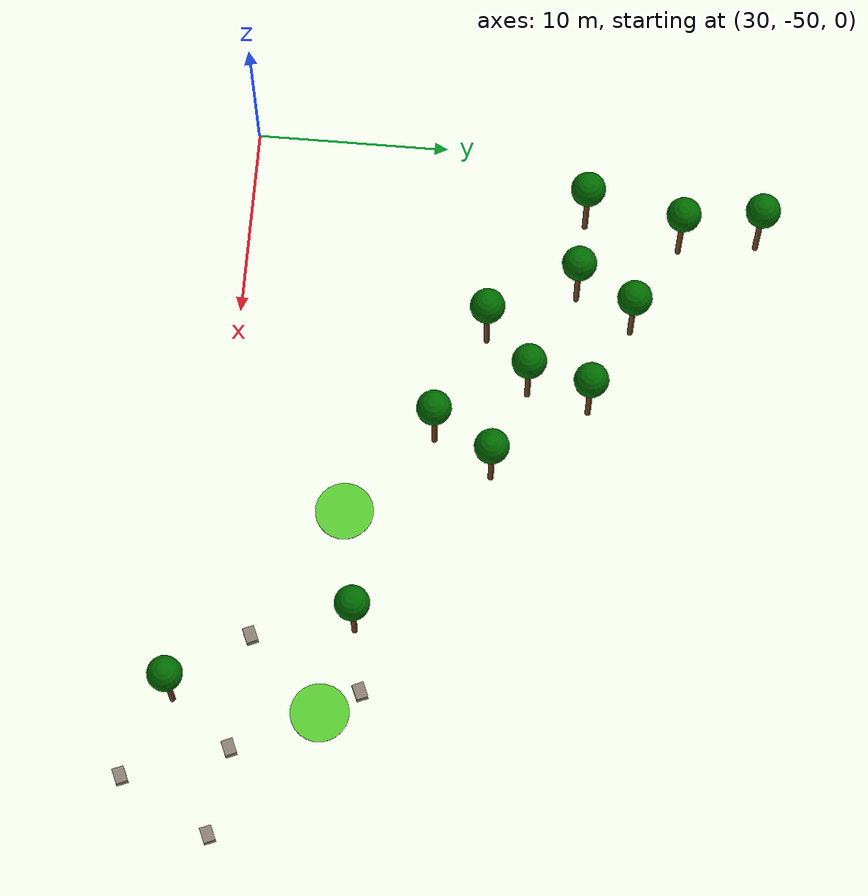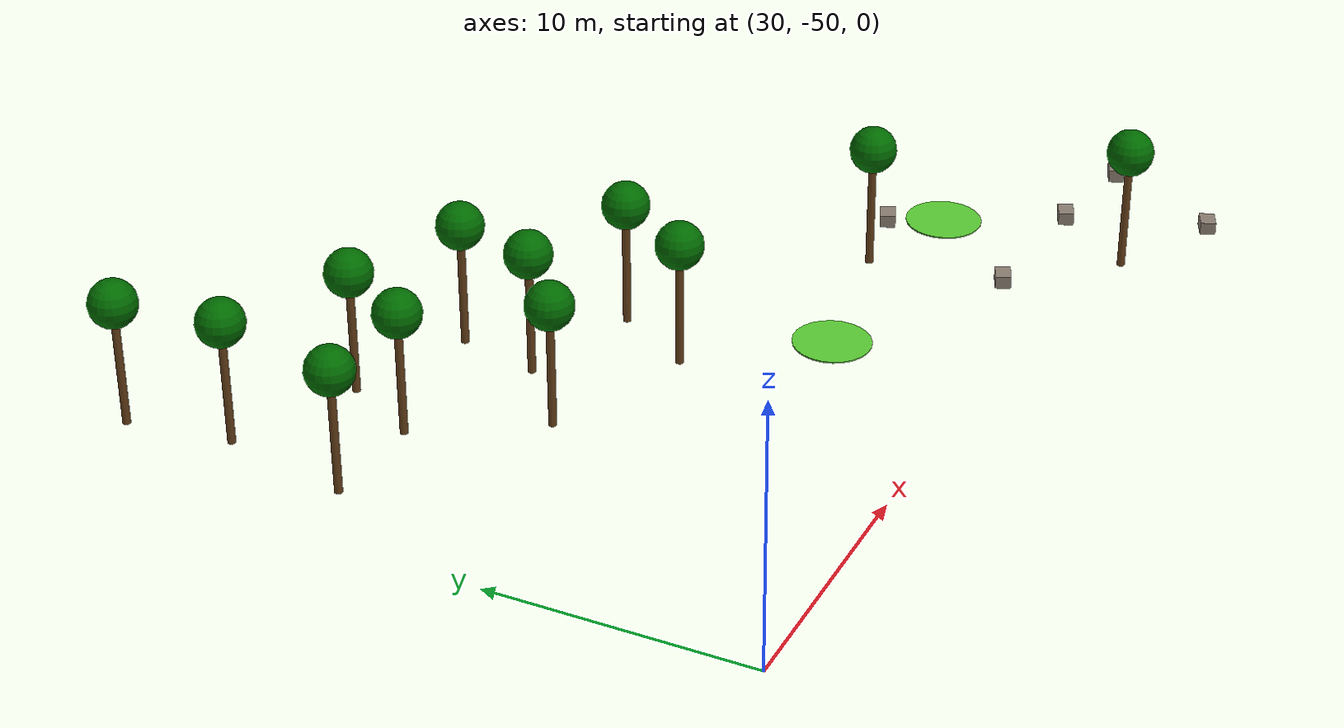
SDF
<sdf version="1.7">
 <world name="default">
  <model name="tree_1_clone_0">
   <static>1</static>
   <link name="trunk">
    <pose>0 0 2 0 -0 0</pose>
    <visual name="v">
     <geometry><cylinder><radius>0.15</radius><length>4</length></cylinder></geometry>
     <material><ambient>0.35 0.2 0.05 1</ambient><diffuse>0.4 0.25 0.1 1</diffuse></material>
    </visual>
    <collision name="c">
     <geometry><cylinder><radius>0.15</radius><length>4</length></cylinder></geometry>
    </collision>
   </link>
   <link name="canopy">
    <pose>0 0 4.9 0 -0 0</pose>
    <visual name="v">
     <geometry><sphere><radius>0.9</radius></sphere></geometry>
     <material><ambient>0 0.38 0 1</ambient><diffuse>0 0.42 0 1</diffuse></material>
    </visual>
    <collision name="c"><geometry><sphere><radius>0.9</radius></sphere></geometry></collision>
   </link>
   <pose>34.5794 -27.5534 -0.637937 0 -0 0</pose>
  </model>
  <model name="tree_1_clone_1">
   <static>1</static>
   <link name="trunk">
    <pose>0 0 2 0 -0 0</pose>
    <visual name="v">
     <geometry><cylinder><radius>0.15</radius><length>4</length></cylinder></geometry>
     <material><ambient>0.35 0.2 0.05 1</ambient><diffuse>0.4 0.25 0.1 1</diffuse></material>
    </visual>
    <collision name="c">
     <geometry><cylinder><radius>0.15</radius><length>4</length></cylinder></geometry>
    </collision>
   </link>
   <link name="canopy">
    <pose>0 0 4.9 0 -0 0</pose>
    <visual name="v">
     <geometry><sphere><radius>0.9</radius></sphere></geometry>
     <material><ambient>0 0.38 0 1</ambient><diffuse>0 0.42 0 1</diffuse></material>
    </visual>
    <collision name="c"><geometry><sphere><radius>0.9</radius></sphere></geometry></collision>
   </link>
   <pose>34.0465 -23.5236 -0.637937 0 -0 0</pose>
  </model>
  <model name="tree_1_clone_2">
   <static>1</static>
   <link name="trunk">
    <pose>0 0 2 0 -0 0</pose>
    <visual name="v">
     <geometry><cylinder><radius>0.15</radius><length>4</length></cylinder></geometry>
     <material><ambient>0.35 0.2 0.05 1</ambient><diffuse>0.4 0.25 0.1 1</diffuse></material>
    </visual>
    <collision name="c">
     <geometry><cylinder><radius>0.15</radius><length>4</length></cylinder></geometry>
    </collision>
   </link>
   <link name="canopy">
    <pose>0 0 4.9 0 -0 0</pose>
    <visual name="v">
     <geometry><sphere><radius>0.9</radius></sphere></geometry>
     <material><ambient>0 0.38 0 1</ambient><diffuse>0 0.42 0 1</diffuse></material>
    </visual>
    <collision name="c"><geometry><sphere><radius>0.9</radius></sphere></geometry></collision>
   </link>
   <pose>37.6913 -32.6882 -0.637937 0 -0 0</pose>
  </model>
  <model name="tree_1_clone_3">
   <static>1</static>
   <link name="trunk">
    <pose>0 0 2 0 -0 0</pose>
    <visual name="v">
     <geometry><cylinder><radius>0.15</radius><length>4</length></cylinder></geometry>
     <material><ambient>0.35 0.2 0.05 1</ambient><diffuse>0.4 0.25 0.1 1</diffuse></material>
    </visual>
    <collision name="c">
     <geometry><cylinder><radius>0.15</radius><length>4</length></cylinder></geometry>
    </collision>
   </link>
   <link name="canopy">
    <pose>0 0 4.9 0 -0 0</pose>
    <visual name="v">
     <geometry><sphere><radius>0.9</radius></sphere></geometry>
     <material><ambient>0 0.38 0 1</ambient><diffuse>0 0.42 0 1</diffuse></material>
    </visual>
    <collision name="c"><geometry><sphere><radius>0.9</radius></sphere></geometry></collision>
   </link>
   <pose>33.5585 -32.5092 -0.637937 0 -0 0</pose>
  </model>
  <model name="tree_1_clone_4">
   <static>1</static>
   <link name="trunk">
    <pose>0 0 2 0 -0 0</pose>
    <visual name="v">
     <geometry><cylinder><radius>0.15</radius><length>4</length></cylinder></geometry>
     <material><ambient>0.35 0.2 0.05 1</ambient><diffuse>0.4 0.25 0.1 1</diffuse></material>
    </visual>
    <collision name="c">
     <geometry><cylinder><radius>0.15</radius><length>4</length></cylinder></geometry>
    </collision>
   </link>
   <link name="canopy">
    <pose>0 0 4.9 0 -0 0</pose>
    <visual name="v">
     <geometry><sphere><radius>0.9</radius></sphere></geometry>
     <material><ambient>0 0.38 0 1</ambient><diffuse>0 0.42 0 1</diffuse></material>
    </visual>
    <collision name="c"><geometry><sphere><radius>0.9</radius></sphere></geometry></collision>
   </link>
   <pose>39.3431 -29.7714 -0.637937 0 -0 0</pose>
  </model>
  <model name="tree_1_clone_5">
   <static>1</static>
   <link name="trunk">
    <pose>0 0 2 0 -0 0</pose>
    <visual name="v">
     <geometry><cylinder><radius>0.15</radius><length>4</length></cylinder></geometry>
     <material><ambient>0.35 0.2 0.05 1</ambient><diffuse>0.4 0.25 0.1 1</diffuse></material>
    </visual>
    <collision name="c">
     <geometry><cylinder><radius>0.15</radius><length>4</length></cylinder></geometry>
    </collision>
   </link>
   <link name="canopy">
    <pose>0 0 4.9 0 -0 0</pose>
    <visual name="v">
     <geometry><sphere><radius>0.9</radius></sphere></geometry>
     <material><ambient>0 0.38 0 1</ambient><diffuse>0 0.42 0 1</diffuse></material>
    </visual>
    <collision name="c"><geometry><sphere><radius>0.9</radius></sphere></geometry></collision>
   </link>
   <pose>43.9413 -31.6669 -0.637937 0 -0 0</pose>
  </model>
  <model name="tree_1_clone_6">
   <static>1</static>
   <link name="trunk">
    <pose>0 0 2 0 -0 0</pose>
    <visual name="v">
     <geometry><cylinder><radius>0.15</radius><length>4</length></cylinder></geometry>
     <material><ambient>0.35 0.2 0.05 1</ambient><diffuse>0.4 0.25 0.1 1</diffuse></material>
    </visual>
    <collision name="c">
     <geometry><cylinder><radius>0.15</radius><length>4</length></cylinder></geometry>
    </collision>
   </link>
   <link name="canopy">
    <pose>0 0 4.9 0 -0 0</pose>
    <visual name="v">
     <geometry><sphere><radius>0.9</radius></sphere></geometry>
     <material><ambient>0 0.38 0 1</ambient><diffuse>0 0.42 0 1</diffuse></material>
    </visual>
    <collision name="c"><geometry><sphere><radius>0.9</radius></sphere></geometry></collision>
   </link>
   <pose>43.1872 -34.8463 -0.637937 0 -0 0</pose>
  </model>
  <model name="tree_1_clone_7">
   <static>1</static>
   <link name="trunk">
    <pose>0 0 2 0 -0 0</pose>
    <visual name="v">
     <geometry><cylinder><radius>0.15</radius><length>4</length></cylinder></geometry>
     <material><ambient>0.35 0.2 0.05 1</ambient><diffuse>0.4 0.25 0.1 1</diffuse></material>
    </visual>
    <collision name="c">
     <geometry><cylinder><radius>0.15</radius><length>4</length></cylinder></geometry>
    </collision>
   </link>
   <link name="canopy">
    <pose>0 0 4.9 0 -0 0</pose>
    <visual name="v">
     <geometry><sphere><radius>0.9</radius></sphere></geometry>
     <material><ambient>0 0.38 0 1</ambient><diffuse>0 0.42 0 1</diffuse></material>
    </visual>
    <collision name="c"><geometry><sphere><radius>0.9</radius></sphere></geometry></collision>
   </link>
   <pose>40.3824 -37.167 -0.637937 0 -0 0</pose>
  </model>
  <model name="tree_1_clone_8">
   <static>1</static>
   <link name="trunk">
    <pose>0 0 2 0 -0 0</pose>
    <visual name="v">
     <geometry><cylinder><radius>0.15</radius><length>4</length></cylinder></geometry>
     <material><ambient>0.35 0.2 0.05 1</ambient><diffuse>0.4 0.25 0.1 1</diffuse></material>
    </visual>
    <collision name="c">
     <geometry><cylinder><radius>0.15</radius><length>4</length></cylinder></geometry>
    </collision>
   </link>
   <link name="canopy">
    <pose>0 0 4.9 0 -0 0</pose>
    <visual name="v">
     <geometry><sphere><radius>0.9</radius></sphere></geometry>
     <material><ambient>0 0.38 0 1</ambient><diffuse>0 0.42 0 1</diffuse></material>
    </visual>
    <collision name="c"><geometry><sphere><radius>0.9</radius></sphere></geometry></collision>
   </link>
   <pose>46.0494 -39.4144 -0.637937 0 -0 0</pose>
  </model>
  <model name="tree_1_clone_9">
   <static>1</static>
   <link name="trunk">
    <pose>0 0 2 0 -0 0</pose>
    <visual name="v">
     <geometry><cylinder><radius>0.15</radius><length>4</length></cylinder></geometry>
     <material><ambient>0.35 0.2 0.05 1</ambient><diffuse>0.4 0.25 0.1 1</diffuse></material>
    </visual>
    <collision name="c">
     <geometry><cylinder><radius>0.15</radius><length>4</length></cylinder></geometry>
    </collision>
   </link>
   <link name="canopy">
    <pose>0 0 4.9 0 -0 0</pose>
    <visual name="v">
     <geometry><sphere><radius>0.9</radius></sphere></geometry>
     <material><ambient>0 0.38 0 1</ambient><diffuse>0 0.42 0 1</diffuse></material>
    </visual>
    <collision name="c"><geometry><sphere><radius>0.9</radius></sphere></geometry></collision>
   </link>
   <pose>47.8549 -36.3769 -0.637937 0 -0 0</pose>
  </model>
  <model name="short_grass_1_clone_4_clone_0">
   <static>1</static>
   <link name="link">
    <pose>0 0 0.025 0 -0 0</pose>
    <visual name="v">
     <geometry><cylinder><radius>1.5</radius><length>0.05</length></cylinder></geometry>
     <material><ambient>0.35 0.8 0.2 1</ambient><diffuse>0.35 0.8 0.2 1</diffuse></material>
    </visual>
    <collision name="c">
     <geometry><cylinder><radius>0.0</radius><length>0.00</length></cylinder></geometry>
    </collision>
    <inertial>
     <inertia><ixx>1</ixx><ixy>0</ixy><ixz>0</ixz><iyy>1</iyy><iyz>0</iyz><izz>1</izz></inertia>
     <mass>1</mass>
    </inertial>
   </link>
   <pose>50.162 -43.6932 -0.944319 0.010326 0.016262 -0.106159</pose>
  </model>
  <model name="short_grass_1_clone_4_clone_0_clone">
   <static>1</static>
   <link name="link">
    <pose>0 0 0.025 0 -0 0</pose>
    <visual name="v">
     <geometry><cylinder><radius>1.5</radius><length>0.05</length></cylinder></geometry>
     <material><ambient>0.35 0.8 0.2 1</ambient><diffuse>0.35 0.8 0.2 1</diffuse></material>
    </visual>
    <collision name="c">
     <geometry><cylinder><radius>0.0</radius><length>0.00</length></cylinder></geometry>
    </collision>
    <inertial>
     <inertia><ixx>1</ixx><ixy>0</ixy><ixz>0</ixz><iyy>1</iyy><iyz>0</iyz><izz>1</izz></inertia>
     <mass>1</mass>
    </inertial>
   </link>
   <pose>60.7823 -43.9693 -1.10567 0.010317 0.016216 -0.106129</pose>
  </model>
  <model name="tree_1_clone_8_clone">
   <static>1</static>
   <link name="trunk">
    <pose>0 0 2 0 -0 0</pose>
    <visual name="v">
     <geometry><cylinder><radius>0.15</radius><length>4</length></cylinder></geometry>
     <material><ambient>0.35 0.2 0.05 1</ambient><diffuse>0.4 0.25 0.1 1</diffuse></material>
    </visual>
    <collision name="c">
     <geometry><cylinder><radius>0.15</radius><length>4</length></cylinder></geometry>
    </collision>
   </link>
   <link name="canopy">
    <pose>0 0 4.9 0 -0 0</pose>
    <visual name="v">
     <geometry><sphere><radius>0.9</radius></sphere></geometry>
     <material><ambient>0 0.38 0 1</ambient><diffuse>0 0.42 0 1</diffuse></material>
    </visual>
    <collision name="c"><geometry><sphere><radius>0.9</radius></sphere></geometry></collision>
   </link>
   <pose>56.3847 -42.5994 -1.03682 0 -0 0</pose>
  </model>
  <model name="tree_1_clone_8_clone_0">
   <static>1</static>
   <link name="trunk">
    <pose>0 0 2 0 -0 0</pose>
    <visual name="v">
     <geometry><cylinder><radius>0.15</radius><length>4</length></cylinder></geometry>
     <material><ambient>0.35 0.2 0.05 1</ambient><diffuse>0.4 0.25 0.1 1</diffuse></material>
    </visual>
    <collision name="c">
     <geometry><cylinder><radius>0.15</radius><length>4</length></cylinder></geometry>
    </collision>
   </link>
   <link name="canopy">
    <pose>0 0 4.9 0 -0 0</pose>
    <visual name="v">
     <geometry><sphere><radius>0.9</radius></sphere></geometry>
     <material><ambient>0 0.38 0 1</ambient><diffuse>0 0.42 0 1</diffuse></material>
    </visual>
    <collision name="c"><geometry><sphere><radius>0.9</radius></sphere></geometry></collision>
   </link>
   <pose>60.6404 -51.3902 -1.20264 0 -0 0</pose>
  </model>
  <model name="rock_1_clone_11_clone">
   <static>1</static>
   <link name="link">
    <pose>0 0 0.25 0 -0 0.4</pose>
    <visual name="v">
     <geometry><box><size>0.8 0.6 0.5</size></box></geometry>
     <material><ambient>0.5 0.45 0.4 1</ambient><diffuse>0.55 0.5 0.45 1</diffuse></material>
    </visual>
    <collision name="c"><geometry><box><size>0.8 0.6 0.5</size></box></geometry></collision>
   </link>
   <pose>57.1382 -47.8051 -1.08641 0 -0 0</pose>
  </model>
  <model name="rock_1_clone_11_clone_0">
   <static>1</static>
   <link name="link">
    <pose>0 0 0.25 0 -0 0.4</pose>
    <visual name="v">
     <geometry><box><size>0.8 0.6 0.5</size></box></geometry>
     <material><ambient>0.5 0.45 0.4 1</ambient><diffuse>0.55 0.5 0.45 1</diffuse></material>
    </visual>
    <collision name="c"><geometry><box><size>0.8 0.6 0.5</size></box></geometry></collision>
   </link>
   <pose>59.6183 -42.0372 -1.07916 0 -0 0</pose>
  </model>
  <model name="rock_1_clone_11_clone_1">
   <static>1</static>
   <link name="link">
    <pose>0 0 0.25 0 -0 0.4</pose>
    <visual name="v">
     <geometry><box><size>0.8 0.6 0.5</size></box></geometry>
     <material><ambient>0.5 0.45 0.4 1</ambient><diffuse>0.55 0.5 0.45 1</diffuse></material>
    </visual>
    <collision name="c"><geometry><box><size>0.8 0.6 0.5</size></box></geometry></collision>
   </link>
   <pose>67.4261 -48.8974 -1.28571 0 -0 0</pose>
  </model>
  <model name="rock_1_clone_11_clone_2">
   <static>1</static>
   <link name="link">
    <pose>0 0 0.25 0 -0 0.4</pose>
    <visual name="v">
     <geometry><box><size>0.8 0.6 0.5</size></box></geometry>
     <material><ambient>0.5 0.45 0.4 1</ambient><diffuse>0.55 0.5 0.45 1</diffuse></material>
    </visual>
    <collision name="c"><geometry><box><size>0.8 0.6 0.5</size></box></geometry></collision>
   </link>
   <pose>64.8212 -53.5494 -1.25416 0 -0 0</pose>
  </model>
  <model name="rock_1_clone_11_clone_3">
   <static>1</static>
   <link name="link">
    <pose>0 0 0.25 0 -0 0.4</pose>
    <visual name="v">
     <geometry><box><size>0.8 0.6 0.5</size></box></geometry>
     <material><ambient>0.5 0.45 0.4 1</ambient><diffuse>0.55 0.5 0.45 1</diffuse></material>
    </visual>
    <collision name="c"><geometry><box><size>0.8 0.6 0.5</size></box></geometry></collision>
   </link>
   <pose>62.9871 -48.2871 -1.16893 0 -0 0</pose>
  </model>
 </world>
</sdf>
